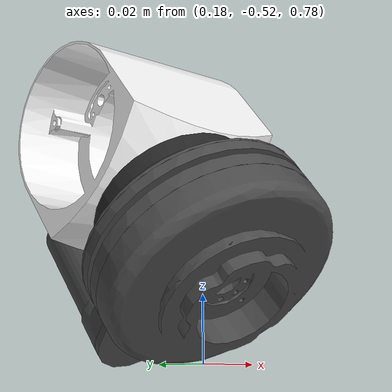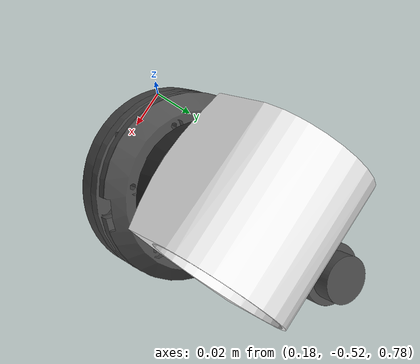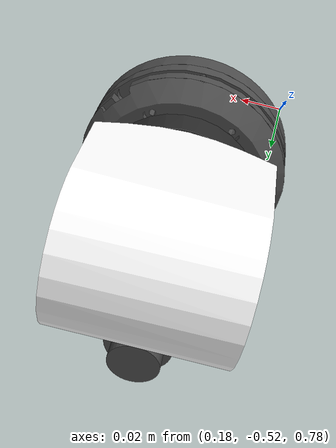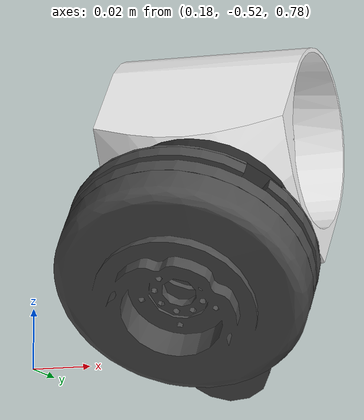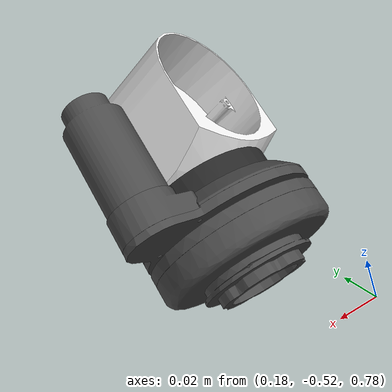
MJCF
<mujoco model="left_arm_6">
  <default>
    <default class="visual">
      <geom group="2" type="mesh" contype="0" conaffinity="0"/>
    </default>
    <default class="collision">
      <geom group="3" type="mesh"/>
    </default>
  </default>
  <asset>
    <material name="152,170,175_10.001" specular="1.0" shininess="0.2" rgba="0.596078 0.666667 0.686275 1.000000"/>
    <material name="247,247,247_44.001" specular="1.0" shininess="0.2" rgba="0.968627 0.968627 0.968627 1.000000"/>
    <material name="254,254,255_50.001" specular="1.0" shininess="0.2" rgba="0.996078 0.996078 1.000000 1.000000"/>
    <material name="39,39,39_7.001" specular="1.0" shininess="0.2" rgba="0.152941 0.152941 0.152941 1.000000"/>
    <material name="75,75,75_56.001" specular="1.0" shininess="0.2" rgba="0.294118 0.294118 0.294118 1.000000"/>
    <material name="75,75,75_57.001" specular="1.0" shininess="0.2" rgba="0.294118 0.294118 0.294118 1.000000"/>
    <material name="75,75,75_58.001" specular="1.0" shininess="0.2" rgba="0.294118 0.294118 0.294118 1.000000"/>
    <material name="75,75,75_60.001" specular="1.0" shininess="0.2" rgba="0.294118 0.294118 0.294118 1.000000"/>
    <material name="75,75,75_61.001" specular="1.0" shininess="0.2" rgba="0.294118 0.294118 0.294118 1.000000"/>
    <material name="75,75,75_62.001" specular="1.0" shininess="0.2" rgba="0.294118 0.294118 0.294118 1.000000"/>
    <mesh file="left_arm_6_0.obj"/>
    <mesh file="left_arm_6_1.obj"/>
    <mesh file="left_arm_6_2.obj"/>
    <mesh file="left_arm_6_3.obj"/>
    <mesh file="left_arm_6_4.obj"/>
    <mesh file="left_arm_6_5.obj"/>
    <mesh file="left_arm_6_6.obj"/>
    <mesh file="left_arm_6_7.obj"/>
    <mesh file="left_arm_6_8.obj"/>
    <mesh file="left_arm_6_9.obj"/>
  </asset>
  <worldbody>
    <body name="left_arm_6">
      <geom mesh="left_arm_6_0" material="75,75,75_56.001" class="visual"/>
      <geom mesh="left_arm_6_1" material="75,75,75_61.001" class="visual"/>
      <geom mesh="left_arm_6_2" material="75,75,75_58.001" class="visual"/>
      <geom mesh="left_arm_6_3" material="75,75,75_57.001" class="visual"/>
      <geom mesh="left_arm_6_4" material="39,39,39_7.001" class="visual"/>
      <geom mesh="left_arm_6_5" material="254,254,255_50.001" class="visual"/>
      <geom mesh="left_arm_6_6" material="75,75,75_62.001" class="visual"/>
      <geom mesh="left_arm_6_7" material="247,247,247_44.001" class="visual"/>
      <geom mesh="left_arm_6_8" material="152,170,175_10.001" class="visual"/>
      <geom mesh="left_arm_6_9" material="75,75,75_60.001" class="visual"/>
      <geom mesh="left_arm_6_0" class="collision"/>
      <geom mesh="left_arm_6_1" class="collision"/>
      <geom mesh="left_arm_6_2" class="collision"/>
      <geom mesh="left_arm_6_3" class="collision"/>
      <geom mesh="left_arm_6_4" class="collision"/>
      <geom mesh="left_arm_6_5" class="collision"/>
      <geom mesh="left_arm_6_6" class="collision"/>
      <geom mesh="left_arm_6_7" class="collision"/>
      <geom mesh="left_arm_6_8" class="collision"/>
      <geom mesh="left_arm_6_9" class="collision"/>
    </body>
  </worldbody>
</mujoco>
